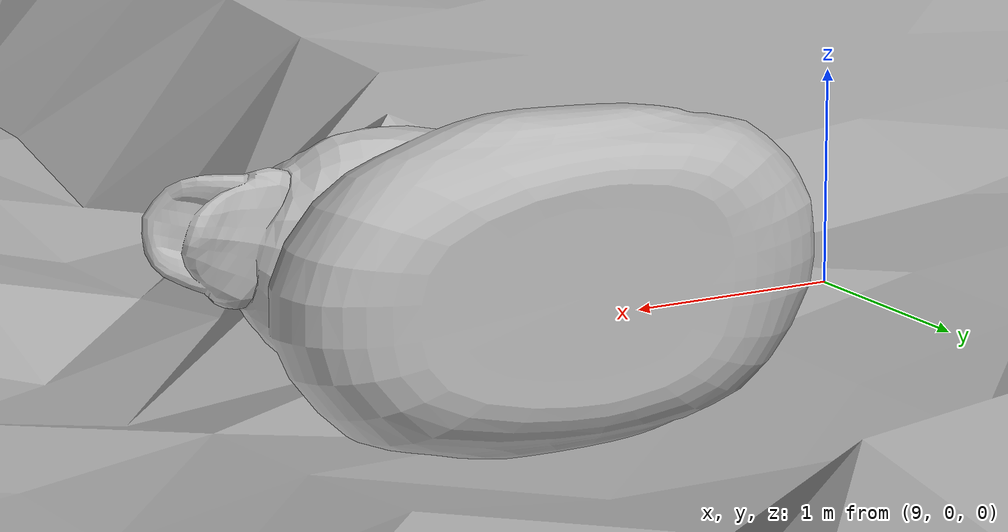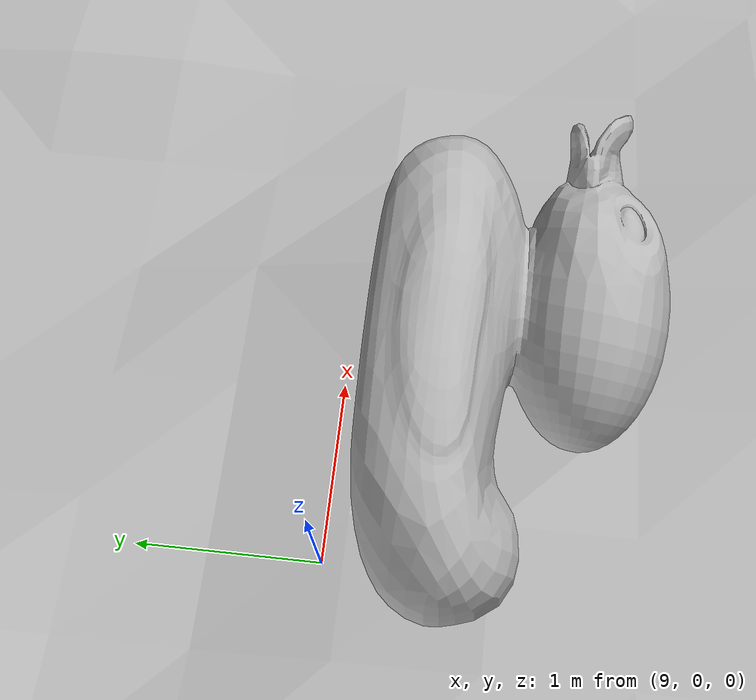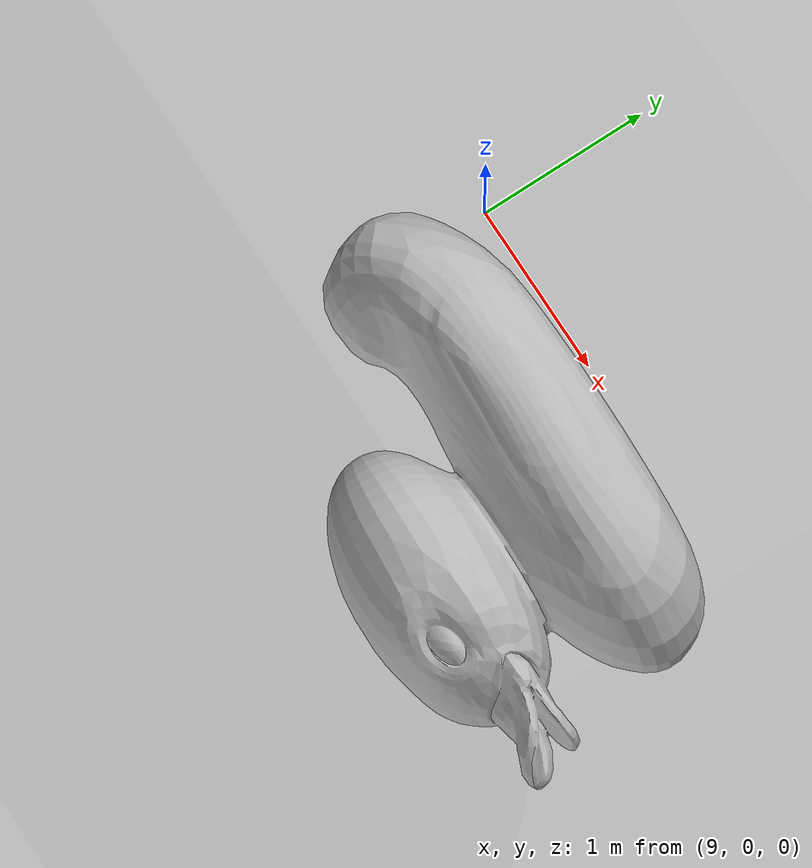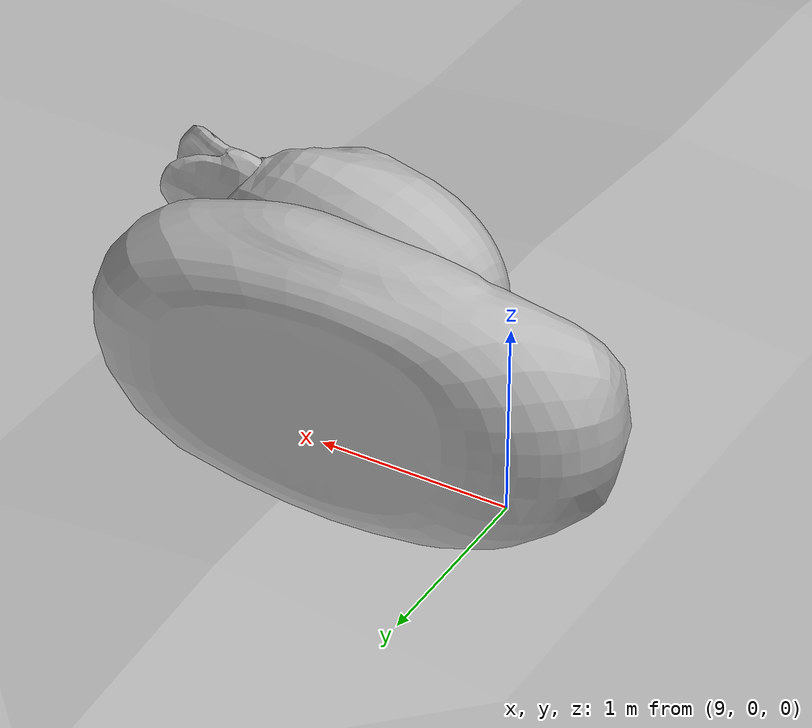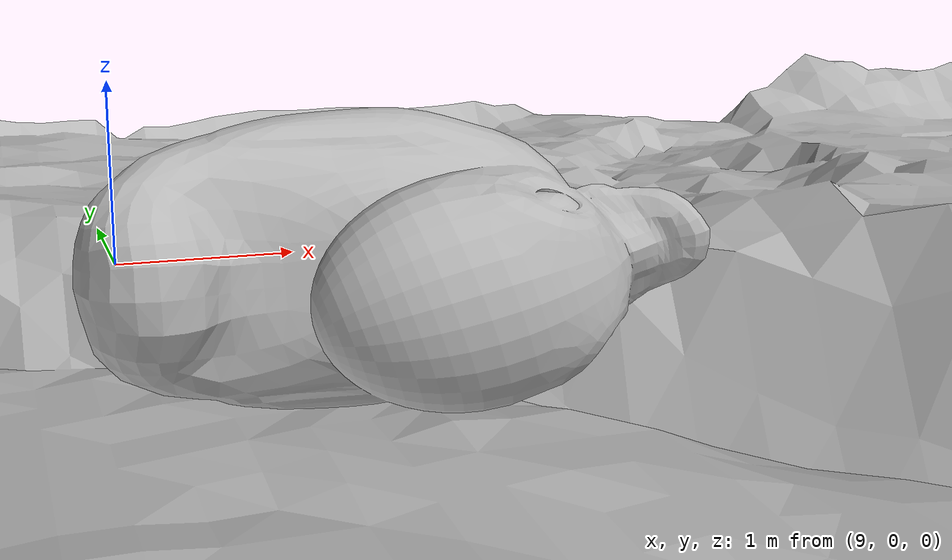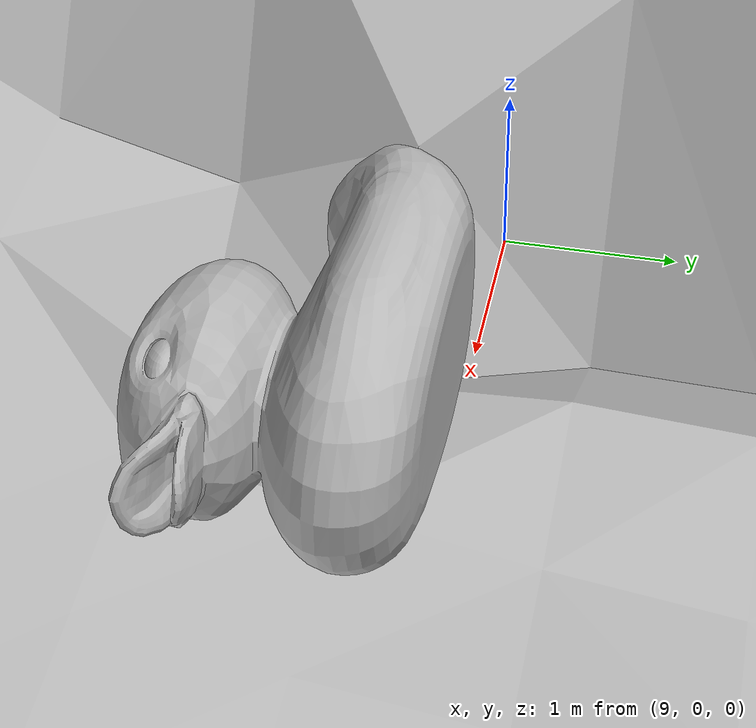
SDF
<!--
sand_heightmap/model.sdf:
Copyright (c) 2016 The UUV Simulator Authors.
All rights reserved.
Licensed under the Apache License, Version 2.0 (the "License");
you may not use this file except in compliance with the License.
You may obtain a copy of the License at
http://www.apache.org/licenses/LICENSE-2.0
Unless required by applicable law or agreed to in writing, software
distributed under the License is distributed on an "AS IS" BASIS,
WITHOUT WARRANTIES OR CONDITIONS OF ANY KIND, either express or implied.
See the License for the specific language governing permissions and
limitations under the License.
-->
<?xml version="1.0"?>
<!-- World to test model interaction with wave -->
<sdf version="1.6"
    xmlns:xacro="http://ros.org/wiki/xacro">
    <world name="vessel_wave">
        <scene>
            <ambient>1.0 1.0 1.0</ambient>
            <background>0.8 0.8 0.8</background>
            <grid>1</grid>
        </scene>

        <spherical_coordinates>
            <surface_model>EARTH_WGS84</surface_model>
            <world_frame_orientation>ENU</world_frame_orientation>
            <latitude_deg>22.9</latitude_deg>
            <longitude_deg>43.2</longitude_deg>
            <elevation>0</elevation>
            <heading_deg>0</heading_deg>
        </spherical_coordinates>

        <!-- World plugins -->
        <plugin filename="gz-sim-physics-system" name="gz::sim::systems::Physics">
        </plugin>
        <plugin filename="gz-sim-sensors-system" name="gz::sim::systems::Sensors">
            <render_engine>ogre2</render_engine>
        </plugin>
        <plugin filename="gz-sim-user-commands-system" name="gz::sim::systems::UserCommands">
        </plugin>
        <plugin filename="gz-sim-scene-broadcaster-system" name="gz::sim::systems::SceneBroadcaster">
        </plugin>
        <plugin filename="gz-sim-navsat-system" name="gz::sim::systems::NavSat">
        </plugin>
        <plugin filename="gz-sim-imu-system" name="gz::sim::systems::Imu">
        </plugin>
        <plugin filename="gz-sim-magnetometer-system" name="gz::sim::systems::Magnetometer">
        </plugin>

        <!-- Models -->
        <model name="wave_world">
            <plugin filename="ais_plugin" name="lotusim::gazebo::AISPlugin">
                <period> 1 </period>
            </plugin>

            <include>
                <pose>0 0 0 0 0 0</pose>
                <uri>model://regular_waves</uri>
            </include>

            <include>
                <uri>model://duck</uri>
                <name>ducky</name>
                <pose>10 0 0 0 0 0</pose>
            </include>

            <include>
                <uri>model://lrauv</uri>
                <name>lrauv</name>
                <pose>10 0 0 0 0 0</pose>
            </include>

            <include>
                <uri>model://sand_heightmap</uri>
                <!-- The name affect the cmd namespace -->
                <name>sand</name>
                <pose>0 0 -50 0 0 0</pose>
            </include>

            <include>
                <uri>model://wamv</uri>
                <name>wamv_vessel</name>
                <pose>0 0 0 0 0 0</pose>
                <plugin filename="gz-waves1-hydrodynamics-system"
                    name="gz::sim::systems::Hydrodynamics">
                    <enable>wave_world::wamv_vessel::base_link</enable>

                    <hydrodynamics>
                        <damping_on>1</damping_on>
                        <viscous_drag_on>1</viscous_drag_on>
                        <pressure_drag_on>1</pressure_drag_on>

                        <!-- Linear and Angular Damping -->
                        <cDampL1>1.0E-6</cDampL1>
                        <cDampL2>1.0E-6</cDampL2>
                        <cDampR1>1.0E-6</cDampR1>
                        <cDampR2>1.0E-6</cDampR2>

                        <!-- 'Pressure' Drag -->
                        <cPDrag1>1.0E+2</cPDrag1>
                        <cPDrag2>1.0E+2</cPDrag2>
                        <fPDrag>0.4</fPDrag>
                        <cSDrag1>1.0E+2</cSDrag1>
                        <cSDrag2>1.0E+2</cSDrag2>
                        <fSDrag>0.4</fSDrag>
                        <vRDrag>1.0</vRDrag>
                    </hydrodynamics>
                </plugin>

                <!-- Labelling system -->
            </include>

            <!-- Needed for all the gazebo tf frames -->
            <plugin filename="gz-sim-pose-publisher-system" name="gz::sim::systems::PosePublisher">
                <publish_link_pose>true</publish_link_pose>
                <use_pose_vector_msg>true</use_pose_vector_msg>
                <publish_sensor_pose>false</publish_sensor_pose>
                <publish_collision_pose>false</publish_collision_pose>
                <publish_visual_pose>false</publish_visual_pose>
                <publish_nested_model_pose>true</publish_nested_model_pose>
                <static_publisher>false</static_publisher>
                <publish_model_pose>true</publish_model_pose>
            </plugin>
        </model>

    </world>
</sdf>

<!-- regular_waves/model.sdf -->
<sdf version="1.6">
  <model name="regular_waves">
    <static>true</static>

    <plugin
        filename="gz-waves1-waves-model-system"
        name="gz::sim::systems::WavesModel">
      <static>0</static>
      <update_rate>30</update_rate>
      <wave>
        <tile_size>1024</tile_size>
        <cell_count>128</cell_count>

        <algorithm>sinusoid</algorithm>
        <amplitude>1.0</amplitude>
        <period>6.0</period>
        <direction>1 0</direction>
      </wave>
    </plugin>
    <plugin
      filename="LoggingSystem"
      name="logging_system::LoggingSystem">
    </plugin>

    <link name="base_link">
      <visual name="visual">
        <transparency>1</transparency>
        <geometry>
          <mesh>
            <uri>models://waves/materials/mesh_L256m_N256.dae</uri>
          </mesh>
        </geometry>
        <material>
          <ambient>0.0 0.05 0.8 0.92</ambient>
          <diffuse>0.0 0.1 0.7 0.35</diffuse>
          <specular>0.7 0.7 0.7 0.92</specular>

          <pbr>
            <metal>
              <albedo_map>models://waves/materials/water.jpg</albedo_map>
              <normal_map>models://waves/materials/wave_normals.dds</normal_map>
              <environment_map>models://waves/materials/skybox_lowres.dds</environment_map>
              <roughness>0.3</roughness>
              <metalness>0.1</metalness>
            </metal>
          </pbr>

        <double_sided>
        1
        </double_sided>
        </material>

        <plugin
            filename="gz-waves1-waves-visual-system"
            name="gz::sim::systems::WavesVisual">
          <static>0</static>
          <mesh_deformation_method>DYNAMIC_GEOMETRY</mesh_deformation_method>
          <tiles_x>-0 0</tiles_x>
          <tiles_y>-0 0</tiles_y>
          <wave>
            <tile_size>1024</tile_size>
            <cell_count>128</cell_count>

            <algorithm>sinusoid</algorithm>
            <amplitude>1.0</amplitude>
            <period>6.0</period>
            <direction>1 0</direction>
          </wave>

          <!-- TODO: should not be required if using PBS shader -->
          <shader language="metal">
            <vertex>models://waves/materials/waves_vs.metal</vertex>
            <fragment>models://waves/materials/waves_fs.metal</fragment>
          </shader>

        </plugin>
      </visual>
    </link>
  </model>
</sdf>

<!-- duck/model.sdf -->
<sdf version='1.6'>
  <model name='duck'>
    <static>false</static>
    <link name="base_link">
      <visual name="visual">
        <pose>0 0 0 1.5708 0 0</pose>
        <geometry>
          <mesh>
            <uri>model://duck/meshes/duck.dae</uri>
            <scale>4 4 4</scale>
          </mesh>
        </geometry>
      </visual>
      <collision name="collision">
        <pose>0 0 0 0 0 0</pose>
        <geometry>
          <mesh>
            <uri>model://duck/meshes/duck_collision.stl</uri>
            <scale>4 4 4</scale>
          </mesh>
        </geometry>
      </collision>
      <inertial>
        <pose>0 0 0 0 0 0</pose>
        <mass>400</mass>
        <inertia>
          <ixx>266</ixx>
          <ixy>0</ixy>
          <iyy>266</iyy>
          <iyz>0</iyz>
          <izz>266</izz>
        </inertia>
      </inertial>
    </link>

  </model>
</sdf>

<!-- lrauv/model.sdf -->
<sdf version="1.6">
  <model name="lrauv">
    <!-- Body -->
    <link name="base_link">
      <pose>0 0 0 0 0 3.1415</pose>
      <collision name="collision">
        <pose>0 0 0 0 0 0</pose>
        <geometry>
          <mesh>
            <uri>model://lrauv/meshes/tethys.dae</uri>
            <submesh>
              <name>Body</name>
              <center>false</center>
            </submesh>
          </mesh>
        </geometry>
      </collision>
      <sensor name="ais_sensor" type="custom" gz:type="ais">
        <lotusim_power>
          <type>sensor</type>
          <nominal_w>3.0</nominal_w>
          <priority>4</priority>
        </lotusim_power>
        <update_rate>1</update_rate>
        <noise_sigma>0.01</noise_sigma>
        <noise_amplitude>0.01</noise_amplitude>
      </sensor>
      <sensor name="imu_sensor" type="custom" gz:type="imu">
        <lotusim_power>
          <type>sensor</type>
          <nominal_w>3.0</nominal_w>
          <priority>4</priority>
        </lotusim_power>
        <always_on>1</always_on>
        <update_rate>1000.0</update_rate>
      </sensor>
      <sensor name="sector_scanner_sensor" type="custom" gz:type="sector_scanner">
        <update_rate>1</update_rate>
        <sector_width_deg>45.0</sector_width_deg>
        <dwell_time_s>1.0</dwell_time_s>
        <max_range>500.0</max_range>
      </sensor>
    </link>
    <link name="main_generator">
      <lotusim_power>
        <type>rpm_generator</type>
        <fuel_type>hydrogen</fuel_type>
        <fuel_capacity>0.002</fuel_capacity>      <!--full
        tank size in litres-->
        <fuel_level_start>0.001</fuel_level_start>     <!--how
        much fuel at start-->
        <rated_output_w>5000</rated_output_w>
        <rated_rpm>2000</rated_rpm>
        <efficiency>0.35</efficiency>
        <voltage_nominal>48.0</voltage_nominal>
      </lotusim_power>
      <lotus_param>
        <power_system>
          <power_management_type>default</power_management_type>
        </power_system>
      </lotus_param>
    </link>
  </model>
</sdf>

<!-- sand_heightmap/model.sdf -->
<sdf version="1.5">
  <model name="sand_heightmap">
    <static>true</static>
    <link name="link">
      <collision name="ground">
        <pose>0 0 0 0 0 0</pose>
        <geometry>
          <mesh>
            <uri>model://sand_heightmap/meshes/heightmap.dae</uri>
            <scale>2 2 2</scale>
          </mesh>
        </geometry>
      </collision>

      <visual name="ground_sand">
        <cast_shadows>true</cast_shadows>
        <pose>0 0 0 0 0 0</pose>
        <geometry>
          <mesh>
            <uri>model://sand_heightmap/meshes/heightmap.dae</uri>
            <scale>2 2 2</scale>
          </mesh>
        </geometry>
      </visual>
    </link>
  </model>
</sdf>

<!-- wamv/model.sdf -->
<sdf version="1.10">
  <model name="wamv">
    <!-- Base -->
    <link name="base_link">
      <collision name="base_collision">
        <geometry>
          <mesh>
            <uri>model://wamv/meshes/WAM-V-Base.dae</uri>
          </mesh>
        </geometry>
      </collision>
      <sensor name="ais_sensor" type="custom" gz:type="ais">
        <update_rate>1</update_rate>
        <noise_sigma>0.01</noise_sigma>
        <noise_amplitude>0.01</noise_amplitude>
      </sensor>
    </link>
  </model>
</sdf>
